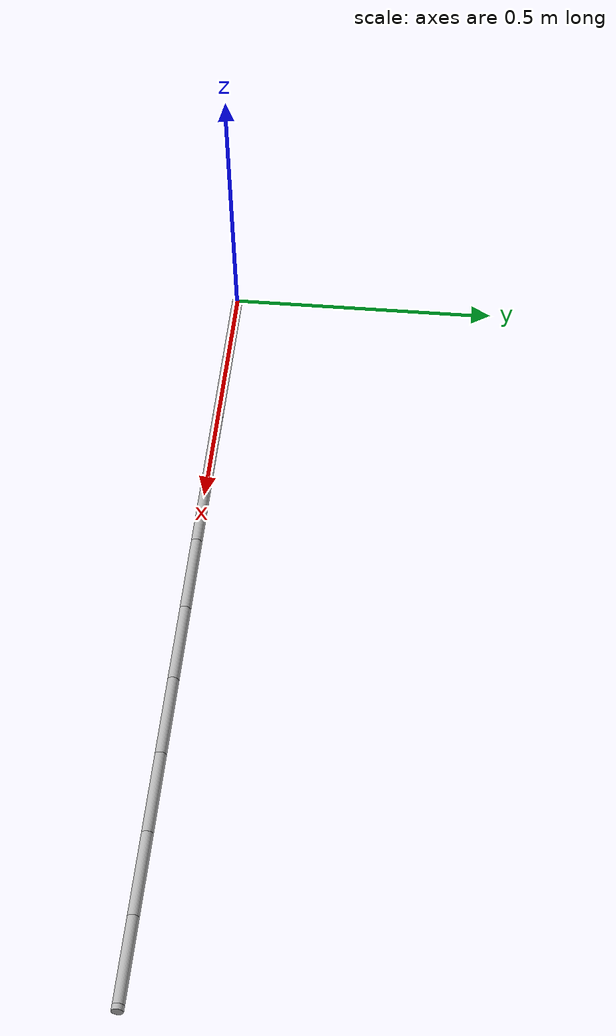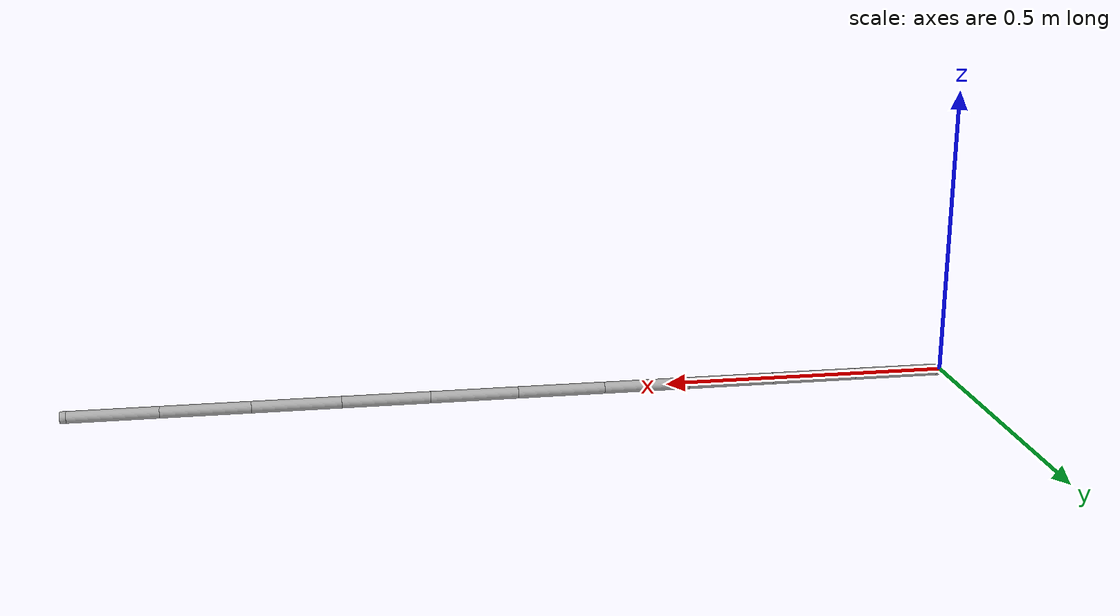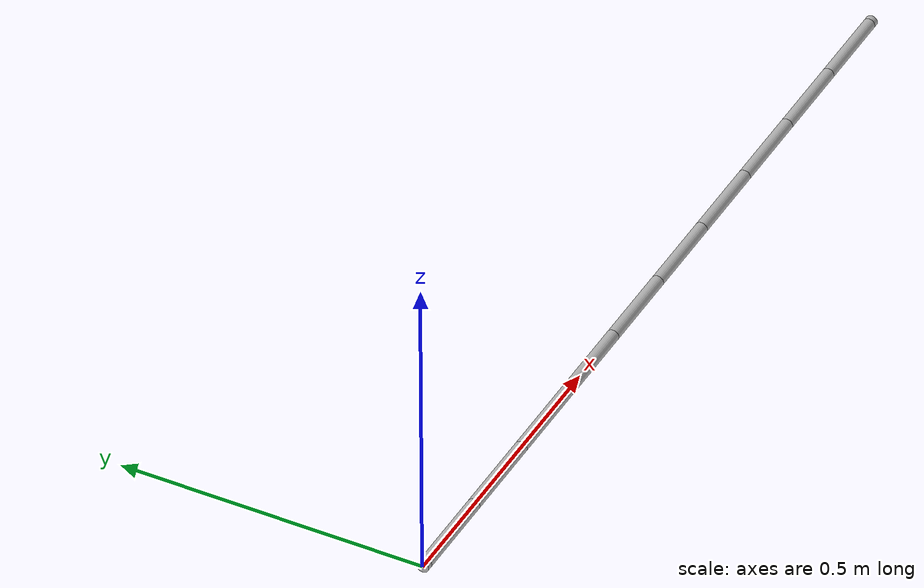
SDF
<sdf version='1.10'>
  <model name='tether'>
    <link name='element_0'>
      <inertial>
        <pose>0.0050000000000000001 0 0 0 1.5707963267948966 0</pose>
        <mass>0.00066666666666666664</mass>
        <inertia>
          <ixx>2.222222222222222e-08</ixx>
          <ixy>0</ixy>
          <ixz>0</ixz>
          <iyy>2.222222222222222e-08</iyy>
          <iyz>0</iyz>
          <izz>3.3333333333333327e-08</izz>
        </inertia>
      </inertial>
      <collision name='element_0_collision'>
        <pose>0.0050000000000000001 0 0 0 1.5707963267948966 0</pose>
        <geometry>
          <cylinder>
            <length>0.0001</length>
            <radius>0.0001</radius>
          </cylinder>
        </geometry>
      </collision>
      <visual name='element_0_visual'>
        <pose>0.0050000000000000001 0 0 0 1.5707963267948966 0</pose>
        <geometry>
          <cylinder>
            <length>0.01</length>
            <radius>0.01</radius>
          </cylinder>
        </geometry>
      </visual>
    </link>
    <joint name='joint_0_to_1' type='ball'>
      <pose relative_to='element_0'>0.01 0 0 0 0 0</pose>
      <parent>element_0</parent>
      <child>element_1</child>
      <axis>
        <xyz>0 1 1</xyz>
        <limit>
          <lower>-inf</lower>
          <upper>inf</upper>
        </limit>
        <dynamics>
          <spring_reference>0</spring_reference>
          <spring_stiffness>0</spring_stiffness>
        </dynamics>
      </axis>
    </joint>
    <link name='element_1'>
      <pose relative_to='joint_0_to_1'>0 0 0 0 0 0</pose>
      <inertial>
        <pose>0.074999999999999997 0 0 0 1.5707963267948966 0</pose>
        <mass>0.01</mass>
        <inertia>
          <ixx>1.9000000000000001e-05</ixx>
          <ixy>0</ixy>
          <ixz>0</ixz>
          <iyy>1.9000000000000001e-05</iyy>
          <iyz>0</iyz>
          <izz>5.0000000000000008e-07</izz>
        </inertia>
      </inertial>
      <collision name='element_1_collision'>
        <pose>0.074999999999999997 0 0 0 1.5707963267948966 0</pose>
        <geometry>
          <cylinder>
            <length>0.0001</length>
            <radius>0.0001</radius>
          </cylinder>
        </geometry>
      </collision>
      <visual name='element_1_visual'>
        <pose>0.074999999999999997 0 0 0 1.5707963267948966 0</pose>
        <geometry>
          <cylinder>
            <length>0.14999999999999999</length>
            <radius>0.01</radius>
          </cylinder>
        </geometry>
      </visual>
    </link>
    <joint name='joint_1_to_2' type='ball'>
      <pose relative_to='element_1'>0.14999999999999999 0 0 0 0 0</pose>
      <parent>element_1</parent>
      <child>element_2</child>
      <axis>
        <xyz>0 1 1</xyz>
        <limit>
          <lower>-inf</lower>
          <upper>inf</upper>
        </limit>
        <dynamics>
          <damping>10</damping>
          <friction>0</friction>
          <spring_reference>0</spring_reference>
          <spring_stiffness>0</spring_stiffness>
        </dynamics>
      </axis>
    </joint>
    <link name='element_2'>
      <pose relative_to='joint_1_to_2'>0 0 0 0 0 0</pose>
      <inertial>
        <pose>0.074999999999999997 0 0 0 1.5707963267948966 0</pose>
        <mass>0.01</mass>
        <inertia>
          <ixx>1.9000000000000001e-05</ixx>
          <ixy>0</ixy>
          <ixz>0</ixz>
          <iyy>1.9000000000000001e-05</iyy>
          <iyz>0</iyz>
          <izz>5.0000000000000008e-07</izz>
        </inertia>
      </inertial>
      <collision name='element_2_collision'>
        <pose>0.074999999999999997 0 0 0 1.5707963267948966 0</pose>
        <geometry>
          <cylinder>
            <length>0.0001</length>
            <radius>0.0001</radius>
          </cylinder>
        </geometry>
      </collision>
      <visual name='element_2_visual'>
        <pose>0.074999999999999997 0 0 0 1.5707963267948966 0</pose>
        <geometry>
          <cylinder>
            <length>0.14999999999999999</length>
            <radius>0.01</radius>
          </cylinder>
        </geometry>
      </visual>
    </link>
    <joint name='joint_2_to_3' type='ball'>
      <pose relative_to='element_2'>0.14999999999999999 0 0 0 0 0</pose>
      <parent>element_2</parent>
      <child>element_3</child>
      <axis>
        <xyz>0 1 1</xyz>
        <limit>
          <lower>-inf</lower>
          <upper>inf</upper>
        </limit>
        <dynamics>
          <damping>10</damping>
          <friction>0</friction>
          <spring_reference>0</spring_reference>
          <spring_stiffness>0</spring_stiffness>
        </dynamics>
      </axis>
    </joint>
    <link name='element_3'>
      <pose relative_to='joint_2_to_3'>0 0 0 0 0 0</pose>
      <inertial>
        <pose>0.074999999999999997 0 0 0 1.5707963267948966 0</pose>
        <mass>0.01</mass>
        <inertia>
          <ixx>1.9000000000000001e-05</ixx>
          <ixy>0</ixy>
          <ixz>0</ixz>
          <iyy>1.9000000000000001e-05</iyy>
          <iyz>0</iyz>
          <izz>5.0000000000000008e-07</izz>
        </inertia>
      </inertial>
      <collision name='element_3_collision'>
        <pose>0.074999999999999997 0 0 0 1.5707963267948966 0</pose>
        <geometry>
          <cylinder>
            <length>0.0001</length>
            <radius>0.0001</radius>
          </cylinder>
        </geometry>
      </collision>
      <visual name='element_3_visual'>
        <pose>0.074999999999999997 0 0 0 1.5707963267948966 0</pose>
        <geometry>
          <cylinder>
            <length>0.14999999999999999</length>
            <radius>0.01</radius>
          </cylinder>
        </geometry>
      </visual>
    </link>
    <joint name='joint_3_to_4' type='ball'>
      <pose relative_to='element_3'>0.14999999999999999 0 0 0 0 0</pose>
      <parent>element_3</parent>
      <child>element_4</child>
      <axis>
        <xyz>0 1 1</xyz>
        <limit>
          <lower>-inf</lower>
          <upper>inf</upper>
        </limit>
        <dynamics>
          <damping>10</damping>
          <friction>0</friction>
          <spring_reference>0</spring_reference>
          <spring_stiffness>0</spring_stiffness>
        </dynamics>
      </axis>
    </joint>
    <link name='element_4'>
      <pose relative_to='joint_3_to_4'>0 0 0 0 0 0</pose>
      <inertial>
        <pose>0.074999999999999997 0 0 0 1.5707963267948966 0</pose>
        <mass>0.01</mass>
        <inertia>
          <ixx>1.9000000000000001e-05</ixx>
          <ixy>0</ixy>
          <ixz>0</ixz>
          <iyy>1.9000000000000001e-05</iyy>
          <iyz>0</iyz>
          <izz>5.0000000000000008e-07</izz>
        </inertia>
      </inertial>
      <collision name='element_4_collision'>
        <pose>0.074999999999999997 0 0 0 1.5707963267948966 0</pose>
        <geometry>
          <cylinder>
            <length>0.0001</length>
            <radius>0.0001</radius>
          </cylinder>
        </geometry>
      </collision>
      <visual name='element_4_visual'>
        <pose>0.074999999999999997 0 0 0 1.5707963267948966 0</pose>
        <geometry>
          <cylinder>
            <length>0.14999999999999999</length>
            <radius>0.01</radius>
          </cylinder>
        </geometry>
      </visual>
    </link>
    <joint name='joint_4_to_5' type='ball'>
      <pose relative_to='element_4'>0.14999999999999999 0 0 0 0 0</pose>
      <parent>element_4</parent>
      <child>element_5</child>
      <axis>
        <xyz>0 1 1</xyz>
        <limit>
          <lower>-inf</lower>
          <upper>inf</upper>
        </limit>
        <dynamics>
          <damping>10</damping>
          <friction>0</friction>
          <spring_reference>0</spring_reference>
          <spring_stiffness>0</spring_stiffness>
        </dynamics>
      </axis>
    </joint>
    <link name='element_5'>
      <pose relative_to='joint_4_to_5'>0 0 0 0 0 0</pose>
      <inertial>
        <pose>0.074999999999999997 0 0 0 1.5707963267948966 0</pose>
        <mass>0.01</mass>
        <inertia>
          <ixx>1.9000000000000001e-05</ixx>
          <ixy>0</ixy>
          <ixz>0</ixz>
          <iyy>1.9000000000000001e-05</iyy>
          <iyz>0</iyz>
          <izz>5.0000000000000008e-07</izz>
        </inertia>
      </inertial>
      <collision name='element_5_collision'>
        <pose>0.074999999999999997 0 0 0 1.5707963267948966 0</pose>
        <geometry>
          <cylinder>
            <length>0.0001</length>
            <radius>0.0001</radius>
          </cylinder>
        </geometry>
      </collision>
      <visual name='element_5_visual'>
        <pose>0.074999999999999997 0 0 0 1.5707963267948966 0</pose>
        <geometry>
          <cylinder>
            <length>0.14999999999999999</length>
            <radius>0.01</radius>
          </cylinder>
        </geometry>
      </visual>
    </link>
    <joint name='joint_5_to_6' type='ball'>
      <pose relative_to='element_5'>0.14999999999999999 0 0 0 0 0</pose>
      <parent>element_5</parent>
      <child>element_6</child>
      <axis>
        <xyz>0 1 1</xyz>
        <limit>
          <lower>-inf</lower>
          <upper>inf</upper>
        </limit>
        <dynamics>
          <damping>10</damping>
          <friction>0</friction>
          <spring_reference>0</spring_reference>
          <spring_stiffness>0</spring_stiffness>
        </dynamics>
      </axis>
    </joint>
    <link name='element_6'>
      <pose relative_to='joint_5_to_6'>0 0 0 0 0 0</pose>
      <inertial>
        <pose>0.074999999999999997 0 0 0 1.5707963267948966 0</pose>
        <mass>0.01</mass>
        <inertia>
          <ixx>1.9000000000000001e-05</ixx>
          <ixy>0</ixy>
          <ixz>0</ixz>
          <iyy>1.9000000000000001e-05</iyy>
          <iyz>0</iyz>
          <izz>5.0000000000000008e-07</izz>
        </inertia>
      </inertial>
      <collision name='element_6_collision'>
        <pose>0.074999999999999997 0 0 0 1.5707963267948966 0</pose>
        <geometry>
          <cylinder>
            <length>0.0001</length>
            <radius>0.0001</radius>
          </cylinder>
        </geometry>
      </collision>
      <visual name='element_6_visual'>
        <pose>0.074999999999999997 0 0 0 1.5707963267948966 0</pose>
        <geometry>
          <cylinder>
            <length>0.14999999999999999</length>
            <radius>0.01</radius>
          </cylinder>
        </geometry>
      </visual>
    </link>
    <joint name='joint_6_to_7' type='ball'>
      <pose relative_to='element_6'>0.14999999999999999 0 0 0 0 0</pose>
      <parent>element_6</parent>
      <child>element_7</child>
      <axis>
        <xyz>0 1 1</xyz>
        <limit>
          <lower>-inf</lower>
          <upper>inf</upper>
        </limit>
        <dynamics>
          <damping>10</damping>
          <friction>0</friction>
          <spring_reference>0</spring_reference>
          <spring_stiffness>0</spring_stiffness>
        </dynamics>
      </axis>
    </joint>
    <link name='element_7'>
      <pose relative_to='joint_6_to_7'>0 0 0 0 0 0</pose>
      <inertial>
        <pose>0.074999999999999997 0 0 0 1.5707963267948966 0</pose>
        <mass>0.01</mass>
        <inertia>
          <ixx>1.9000000000000001e-05</ixx>
          <ixy>0</ixy>
          <ixz>0</ixz>
          <iyy>1.9000000000000001e-05</iyy>
          <iyz>0</iyz>
          <izz>5.0000000000000008e-07</izz>
        </inertia>
      </inertial>
      <collision name='element_7_collision'>
        <pose>0.074999999999999997 0 0 0 1.5707963267948966 0</pose>
        <geometry>
          <cylinder>
            <length>0.0001</length>
            <radius>0.0001</radius>
          </cylinder>
        </geometry>
      </collision>
      <visual name='element_7_visual'>
        <pose>0.074999999999999997 0 0 0 1.5707963267948966 0</pose>
        <geometry>
          <cylinder>
            <length>0.14999999999999999</length>
            <radius>0.01</radius>
          </cylinder>
        </geometry>
      </visual>
    </link>
    <joint name='joint_7_to_8' type='ball'>
      <pose relative_to='element_7'>0.14999999999999999 0 0 0 0 0</pose>
      <parent>element_7</parent>
      <child>element_8</child>
      <axis>
        <xyz>0 1 1</xyz>
        <limit>
          <lower>-inf</lower>
          <upper>inf</upper>
        </limit>
        <dynamics>
          <damping>10</damping>
          <friction>0</friction>
          <spring_reference>0</spring_reference>
          <spring_stiffness>0</spring_stiffness>
        </dynamics>
      </axis>
    </joint>
    <link name='element_8'>
      <pose relative_to='joint_7_to_8'>0 0 0 0 0 0</pose>
      <inertial>
        <pose>0.074999999999999997 0 0 0 1.5707963267948966 0</pose>
        <mass>0.01</mass>
        <inertia>
          <ixx>1.9000000000000001e-05</ixx>
          <ixy>0</ixy>
          <ixz>0</ixz>
          <iyy>1.9000000000000001e-05</iyy>
          <iyz>0</iyz>
          <izz>5.0000000000000008e-07</izz>
        </inertia>
      </inertial>
      <collision name='element_8_collision'>
        <pose>0.074999999999999997 0 0 0 1.5707963267948966 0</pose>
        <geometry>
          <cylinder>
            <length>0.0001</length>
            <radius>0.0001</radius>
          </cylinder>
        </geometry>
      </collision>
      <visual name='element_8_visual'>
        <pose>0.074999999999999997 0 0 0 1.5707963267948966 0</pose>
        <geometry>
          <cylinder>
            <length>0.14999999999999999</length>
            <radius>0.01</radius>
          </cylinder>
        </geometry>
      </visual>
    </link>
    <joint name='joint_8_to_9' type='ball'>
      <pose relative_to='element_8'>0.14999999999999999 0 0 0 0 0</pose>
      <parent>element_8</parent>
      <child>element_9</child>
      <axis>
        <xyz>0 1 1</xyz>
        <limit>
          <lower>-inf</lower>
          <upper>inf</upper>
        </limit>
        <dynamics>
          <damping>10</damping>
          <friction>0</friction>
          <spring_reference>0</spring_reference>
          <spring_stiffness>0</spring_stiffness>
        </dynamics>
      </axis>
    </joint>
    <link name='element_9'>
      <pose relative_to='joint_8_to_9'>0 0 0 0 0 0</pose>
      <inertial>
        <pose>0.074999999999999997 0 0 0 1.5707963267948966 0</pose>
        <mass>0.01</mass>
        <inertia>
          <ixx>1.9000000000000001e-05</ixx>
          <ixy>0</ixy>
          <ixz>0</ixz>
          <iyy>1.9000000000000001e-05</iyy>
          <iyz>0</iyz>
          <izz>5.0000000000000008e-07</izz>
        </inertia>
      </inertial>
      <collision name='element_9_collision'>
        <pose>0.074999999999999997 0 0 0 1.5707963267948966 0</pose>
        <geometry>
          <cylinder>
            <length>0.0001</length>
            <radius>0.0001</radius>
          </cylinder>
        </geometry>
      </collision>
      <visual name='element_9_visual'>
        <pose>0.074999999999999997 0 0 0 1.5707963267948966 0</pose>
        <geometry>
          <cylinder>
            <length>0.14999999999999999</length>
            <radius>0.01</radius>
          </cylinder>
        </geometry>
      </visual>
    </link>
    <joint name='joint_9_to_10' type='ball'>
      <pose relative_to='element_9'>0.14999999999999999 0 0 0 0 0</pose>
      <parent>element_9</parent>
      <child>element_10</child>
      <axis>
        <xyz>0 1 1</xyz>
        <limit>
          <lower>-inf</lower>
          <upper>inf</upper>
        </limit>
        <dynamics>
          <damping>10</damping>
          <friction>0</friction>
          <spring_reference>0</spring_reference>
          <spring_stiffness>0</spring_stiffness>
        </dynamics>
      </axis>
    </joint>
    <link name='element_10'>
      <pose relative_to='joint_9_to_10'>0 0 0 0 0 0</pose>
      <inertial>
        <pose>0.074999999999999997 0 0 0 1.5707963267948966 0</pose>
        <mass>0.01</mass>
        <inertia>
          <ixx>1.9000000000000001e-05</ixx>
          <ixy>0</ixy>
          <ixz>0</ixz>
          <iyy>1.9000000000000001e-05</iyy>
          <iyz>0</iyz>
          <izz>5.0000000000000008e-07</izz>
        </inertia>
      </inertial>
      <collision name='element_10_collision'>
        <pose>0.074999999999999997 0 0 0 1.5707963267948966 0</pose>
        <geometry>
          <cylinder>
            <length>0.0001</length>
            <radius>0.0001</radius>
          </cylinder>
        </geometry>
      </collision>
      <visual name='element_10_visual'>
        <pose>0.074999999999999997 0 0 0 1.5707963267948966 0</pose>
        <geometry>
          <cylinder>
            <length>0.14999999999999999</length>
            <radius>0.01</radius>
          </cylinder>
        </geometry>
      </visual>
    </link>
    <joint name='joint_10_to_11' type='ball'>
      <pose relative_to='element_10'>0.14999999999999999 0 0 0 0 0</pose>
      <parent>element_10</parent>
      <child>element_11</child>
      <axis>
        <xyz>0 1 1</xyz>
        <limit>
          <lower>-inf</lower>
          <upper>inf</upper>
        </limit>
        <dynamics>
          <spring_reference>0</spring_reference>
          <spring_stiffness>0</spring_stiffness>
        </dynamics>
      </axis>
    </joint>
    <link name='element_11'>
      <pose relative_to='joint_10_to_11'>0 0 0 0 0 0</pose>
      <inertial>
        <pose>0.0050000000000000001 0 0 0 1.5707963267948966 0</pose>
        <mass>0.00066666666666666664</mass>
        <inertia>
          <ixx>2.222222222222222e-08</ixx>
          <ixy>0</ixy>
          <ixz>0</ixz>
          <iyy>2.222222222222222e-08</iyy>
          <iyz>0</iyz>
          <izz>3.3333333333333327e-08</izz>
        </inertia>
      </inertial>
      <collision name='element_11_collision'>
        <pose>0.0050000000000000001 0 0 0 1.5707963267948966 0</pose>
        <geometry>
          <cylinder>
            <length>0.0001</length>
            <radius>0.0001</radius>
          </cylinder>
        </geometry>
      </collision>
      <visual name='element_11_visual'>
        <pose>0.0050000000000000001 0 0 0 1.5707963267948966 0</pose>
        <geometry>
          <cylinder>
            <length>0.01</length>
            <radius>0.01</radius>
          </cylinder>
        </geometry>
      </visual>
    </link>
  </model>
</sdf>
